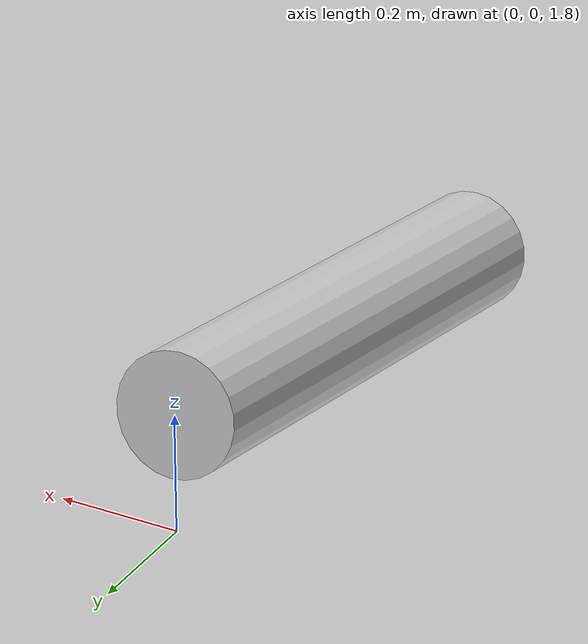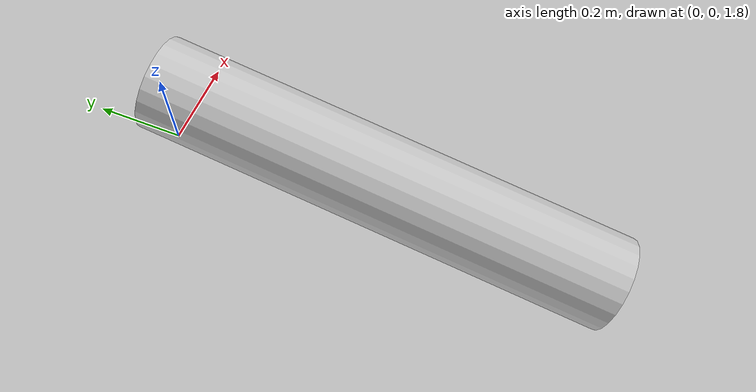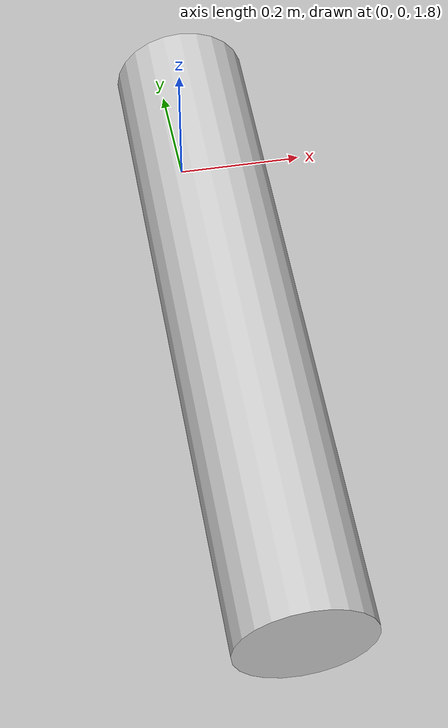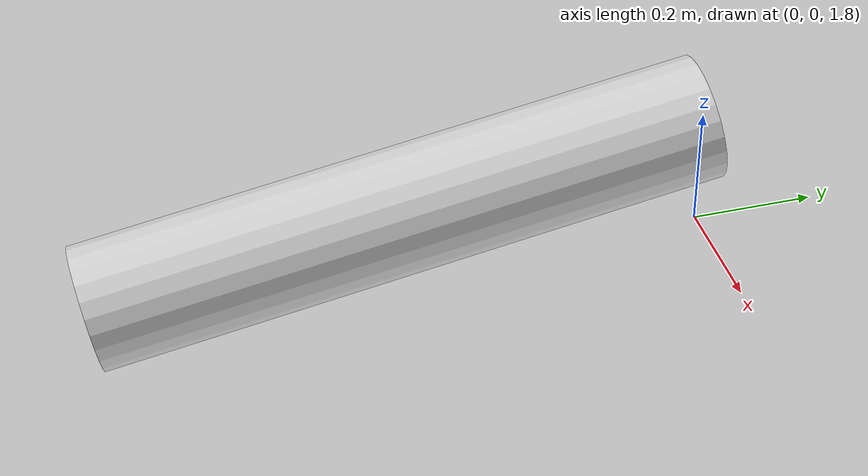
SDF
<?xml version="1.0"?>
<sdf version="1.9">
    <world name="pendulum_world">

        <!-- Double pendulum model -->
        <model name="pendulum">
            <pose>0 0 2 -1.4 0 0</pose>

            <link name="upper_link">
                <pose>0 0 0 0 0 0</pose>
                <inertial>
                    <pose>0 0 -0.5 0 0 0</pose>
                    <mass>1.0</mass>
                    <inertia>
                        <ixx>.5025</ixx>
                        <ixy>0.0</ixy>
                        <ixz>0.0</ixz>
                        <iyy>.5025</iyy>
                        <iyz>0.0</iyz>
                        <izz>.005</izz>
                    </inertia>
                </inertial>
                <!-- this describes what is displayed on screen -->
                <visual name="visual_cylinder">
                    <pose>0 0 -0.5 0 0 0</pose>
                    <geometry>
                        <cylinder>
                            <radius>0.1</radius>
                            <length>1.0</length>
                        </cylinder>
                    </geometry>
                    <material>
                        <ambient>0.8 0.8 0.8 1</ambient>
                        <diffuse>0.8 0.8 0.8 1</diffuse>
                        <specular>0.8 0.8 0.8 1</specular>
                    </material>
                </visual>
            </link>
            <!-- now define the lower link of length 1 meter attached to the end of the upper_link -->
            <joint name="pendulum_joint" type="revolute">
                <parent>world</parent>
                <child>upper_link</child>
                <pose>0 0 0 0 0 0</pose>
                <axis>
                    <!-- spins about x axis -->
                    <xyz>1 0 0</xyz>
                </axis>
                <physics>
                    <provide_feedback>true</provide_feedback>
                </physics>
            </joint>

            <!-- Custom torque publishing plugin -->
            <plugin
                filename="libJointPositionControllerTorquePublisher.so"
                name="quadruped_gazebo::JointPositionControllerTorquePublisher">
                <joint_name>pendulum_joint</joint_name>
                <topic>cmd_pendulum_joint</topic>
                <p_gain>10</p_gain>
                <i_gain>0</i_gain>
                <d_gain>2</d_gain>
                <torque_topic>joint_torque</torque_topic>
                <cmd_max>10</cmd_max>
                <cmd_min>-10</cmd_min>
            </plugin>
        </model>
    </world>
</sdf>
